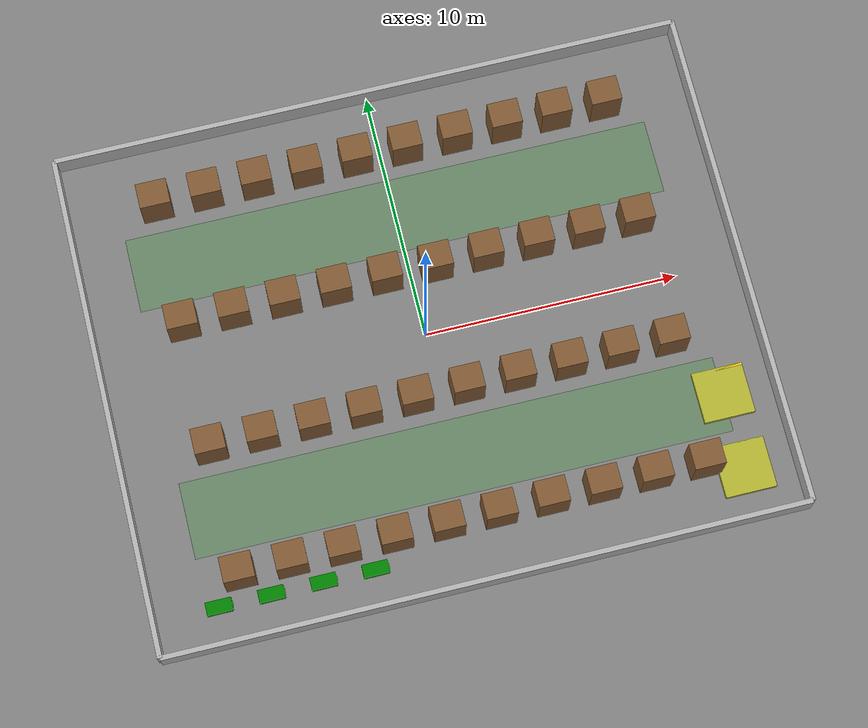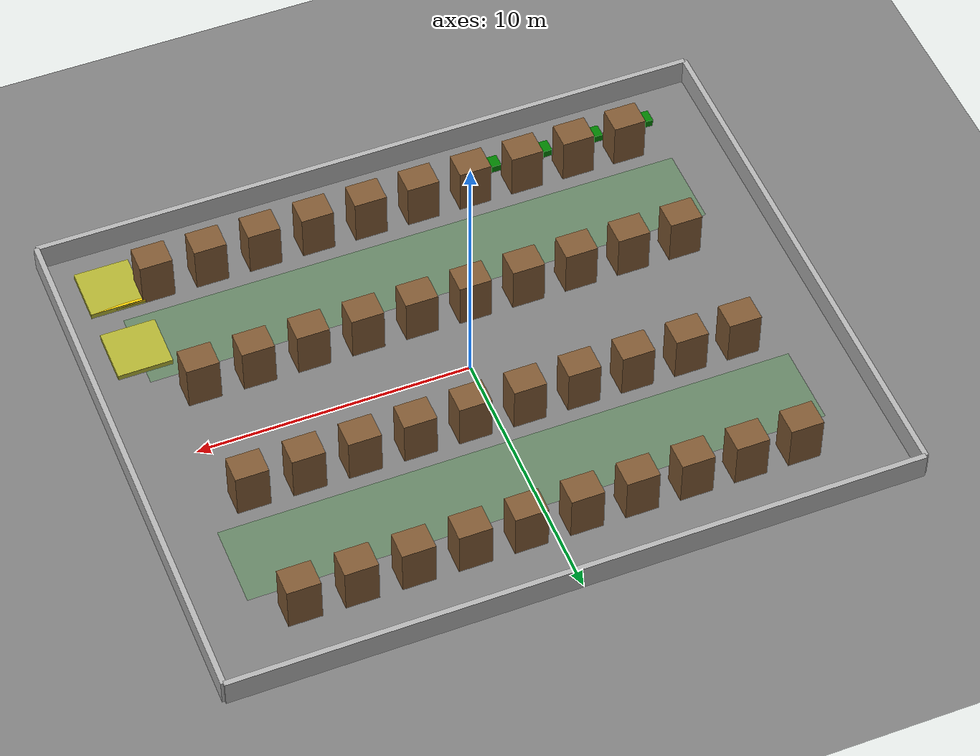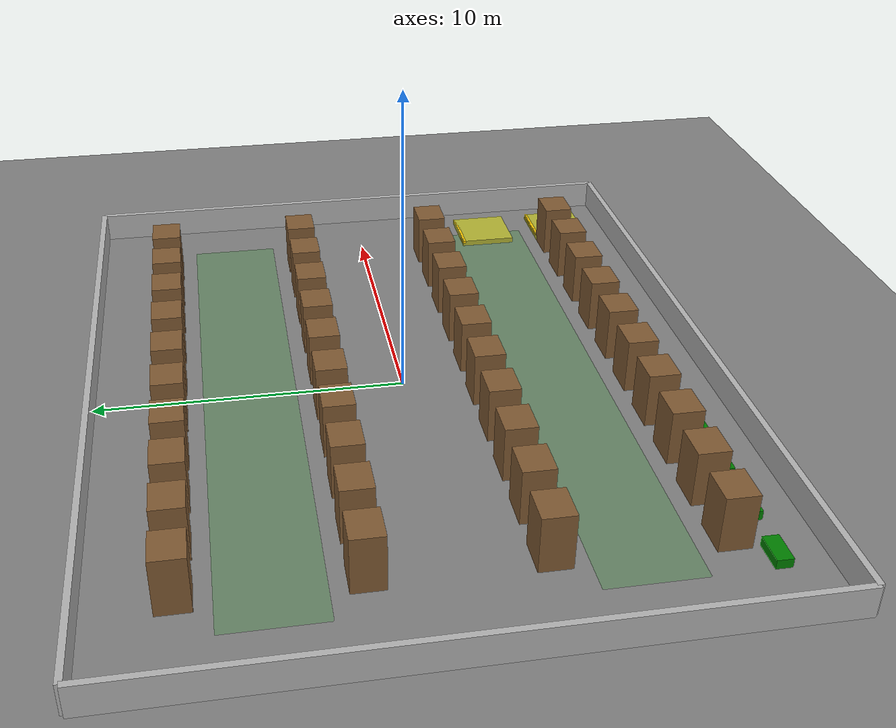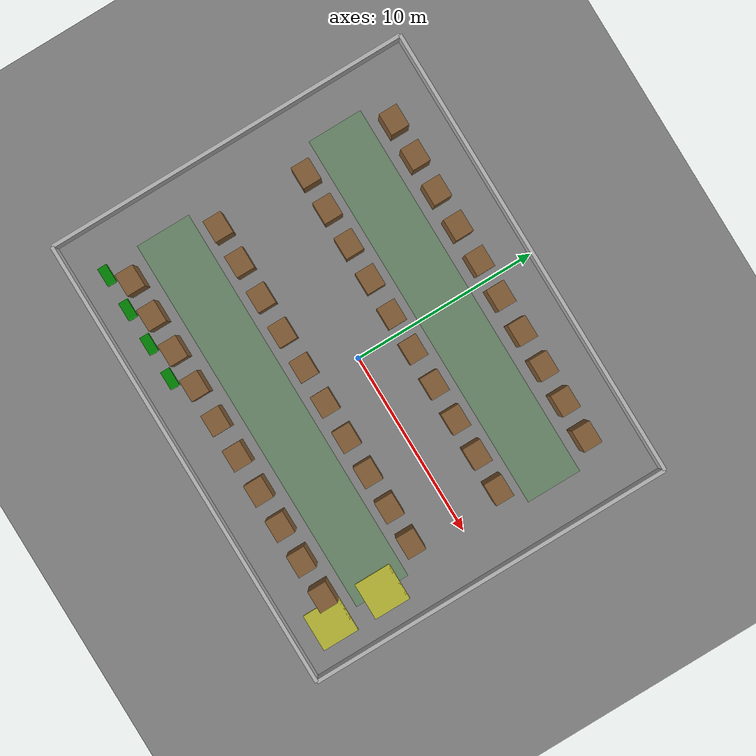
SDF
<?xml version="1.0"?>
<!--
  Warehouse World for AGV Simulation
  Dimensions: 25m x 20m (500m²)
  Layout: 4 rows x 10 shelf groups
  2 main corridors (3m wide) + 4 secondary corridors (2m wide)
  Charging area + Loading docks
-->
<sdf version="1.8">
<world name="warehouse">

  <!-- Physics configuration -->
  <physics name="default_physics" default="true" type="ignored">
    <max_step_size>0.001</max_step_size>
    <real_time_factor>1.0</real_time_factor>
    <real_time_update_rate>1000</real_time_update_rate>
  </physics>

  <!-- Global light -->
  <light name="sun" type="directional">
    <pose>0 0 15 0 0 0</pose>
    <diffuse>0.8 0.8 0.8 1.0</diffuse>
    <specular>0.2 0.2 0.2 1.0</specular>
    <direction>-0.5 0.1 -0.9</direction>
  </light>

  <!-- Ground plane -->
  <model name="ground_plane">
    <static>true</static>
    <link name="link">
      <collision name="collision">
        <geometry>
          <plane>
            <normal>0 0 1</normal>
            <size>30 25</size>
          </plane>
        </geometry>
      </collision>
      <visual name="visual">
        <geometry>
          <plane>
            <normal>0 0 1</normal>
            <size>30 25</size>
          </plane>
        </geometry>
        <material>
          <ambient>0.3 0.3 0.3 1.0</ambient>
          <diffuse>0.5 0.5 0.5 1.0</diffuse>
        </material>
      </visual>
    </link>
  </model>

  <!-- Walls                                        -->
  <model name="wall_north">
    <static>true</static>
    <pose>0 10 0.5 0 0 0</pose>
    <link name="link">
      <collision name="collision">
        <geometry><box><size>25 0.2 1</size></box></geometry>
      </collision>
      <visual name="visual">
        <geometry><box><size>25 0.2 1</size></box></geometry>
        <material>
          <ambient>0.7 0.7 0.7 1.0</ambient>
        </material>
      </visual>
    </link>
  </model>

  <model name="wall_south">
    <static>true</static>
    <pose>0 -10 0.5 0 0 0</pose>
    <link name="link">
      <collision name="collision">
        <geometry><box><size>25 0.2 1</size></box></geometry>
      </collision>
      <visual name="visual">
        <geometry><box><size>25 0.2 1</size></box></geometry>
        <material>
          <ambient>0.7 0.7 0.7 1.0</ambient>
        </material>
      </visual>
    </link>
  </model>

  <model name="wall_east">
    <static>true</static>
    <pose>12.5 0 0.5 0 0 0</pose>
    <link name="link">
      <collision name="collision">
        <geometry><box><size>0.2 20 1</size></box></geometry>
      </collision>
      <visual name="visual">
        <geometry><box><size>0.2 20 1</size></box></geometry>
        <material>
          <ambient>0.7 0.7 0.7 1.0</ambient>
        </material>
      </visual>
    </link>
  </model>

  <model name="wall_west">
    <static>true</static>
    <pose>-12.5 0 0.5 0 0 0</pose>
    <link name="link">
      <collision name="collision">
        <geometry><box><size>0.2 20 1</size></box></geometry>
      </collision>
      <visual name="visual">
        <geometry><box><size>0.2 20 1</size></box></geometry>
        <material>
          <ambient>0.7 0.7 0.7 1.0</ambient>
        </material>
      </visual>
    </link>
  </model>

  <!-- Shelf Rows (4 rows x 10 groups, 2m spacing)   -->
  <!-- Row 1 (top) -->
  <include>
    <uri>model://shelf</uri>
    <name>shelf_1_1</name>
    <pose>-9 7.5 0 0 0 0</pose>
  </include>
  <include>
    <uri>model://shelf</uri>
    <name>shelf_1_2</name>
    <pose>-7 7.5 0 0 0 0</pose>
  </include>
  <include>
    <uri>model://shelf</uri>
    <name>shelf_1_3</name>
    <pose>-5 7.5 0 0 0 0</pose>
  </include>
  <include>
    <uri>model://shelf</uri>
    <name>shelf_1_4</name>
    <pose>-3 7.5 0 0 0 0</pose>
  </include>
  <include>
    <uri>model://shelf</uri>
    <name>shelf_1_5</name>
    <pose>-1 7.5 0 0 0 0</pose>
  </include>
  <include>
    <uri>model://shelf</uri>
    <name>shelf_1_6</name>
    <pose>1 7.5 0 0 0 0</pose>
  </include>
  <include>
    <uri>model://shelf</uri>
    <name>shelf_1_7</name>
    <pose>3 7.5 0 0 0 0</pose>
  </include>
  <include>
    <uri>model://shelf</uri>
    <name>shelf_1_8</name>
    <pose>5 7.5 0 0 0 0</pose>
  </include>
  <include>
    <uri>model://shelf</uri>
    <name>shelf_1_9</name>
    <pose>7 7.5 0 0 0 0</pose>
  </include>
  <include>
    <uri>model://shelf</uri>
    <name>shelf_1_10</name>
    <pose>9 7.5 0 0 0 0</pose>
  </include>

  <!-- Row 2 -->
  <include>
    <uri>model://shelf</uri>
    <name>shelf_2_1</name>
    <pose>-9 2.5 0 0 0 0</pose>
  </include>
  <include>
    <uri>model://shelf</uri>
    <name>shelf_2_2</name>
    <pose>-7 2.5 0 0 0 0</pose>
  </include>
  <include>
    <uri>model://shelf</uri>
    <name>shelf_2_3</name>
    <pose>-5 2.5 0 0 0 0</pose>
  </include>
  <include>
    <uri>model://shelf</uri>
    <name>shelf_2_4</name>
    <pose>-3 2.5 0 0 0 0</pose>
  </include>
  <include>
    <uri>model://shelf</uri>
    <name>shelf_2_5</name>
    <pose>-1 2.5 0 0 0 0</pose>
  </include>
  <include>
    <uri>model://shelf</uri>
    <name>shelf_2_6</name>
    <pose>1 2.5 0 0 0 0</pose>
  </include>
  <include>
    <uri>model://shelf</uri>
    <name>shelf_2_7</name>
    <pose>3 2.5 0 0 0 0</pose>
  </include>
  <include>
    <uri>model://shelf</uri>
    <name>shelf_2_8</name>
    <pose>5 2.5 0 0 0 0</pose>
  </include>
  <include>
    <uri>model://shelf</uri>
    <name>shelf_2_9</name>
    <pose>7 2.5 0 0 0 0</pose>
  </include>
  <include>
    <uri>model://shelf</uri>
    <name>shelf_2_10</name>
    <pose>9 2.5 0 0 0 0</pose>
  </include>

  <!-- Row 3 -->
  <include>
    <uri>model://shelf</uri>
    <name>shelf_3_1</name>
    <pose>-9 -2.5 0 0 0 0</pose>
  </include>
  <include>
    <uri>model://shelf</uri>
    <name>shelf_3_2</name>
    <pose>-7 -2.5 0 0 0 0</pose>
  </include>
  <include>
    <uri>model://shelf</uri>
    <name>shelf_3_3</name>
    <pose>-5 -2.5 0 0 0 0</pose>
  </include>
  <include>
    <uri>model://shelf</uri>
    <name>shelf_3_4</name>
    <pose>-3 -2.5 0 0 0 0</pose>
  </include>
  <include>
    <uri>model://shelf</uri>
    <name>shelf_3_5</name>
    <pose>-1 -2.5 0 0 0 0</pose>
  </include>
  <include>
    <uri>model://shelf</uri>
    <name>shelf_3_6</name>
    <pose>1 -2.5 0 0 0 0</pose>
  </include>
  <include>
    <uri>model://shelf</uri>
    <name>shelf_3_7</name>
    <pose>3 -2.5 0 0 0 0</pose>
  </include>
  <include>
    <uri>model://shelf</uri>
    <name>shelf_3_8</name>
    <pose>5 -2.5 0 0 0 0</pose>
  </include>
  <include>
    <uri>model://shelf</uri>
    <name>shelf_3_9</name>
    <pose>7 -2.5 0 0 0 0</pose>
  </include>
  <include>
    <uri>model://shelf</uri>
    <name>shelf_3_10</name>
    <pose>9 -2.5 0 0 0 0</pose>
  </include>

  <!-- Row 4 (bottom) -->
  <include>
    <uri>model://shelf</uri>
    <name>shelf_4_1</name>
    <pose>-9 -7.5 0 0 0 0</pose>
  </include>
  <include>
    <uri>model://shelf</uri>
    <name>shelf_4_2</name>
    <pose>-7 -7.5 0 0 0 0</pose>
  </include>
  <include>
    <uri>model://shelf</uri>
    <name>shelf_4_3</name>
    <pose>-5 -7.5 0 0 0 0</pose>
  </include>
  <include>
    <uri>model://shelf</uri>
    <name>shelf_4_4</name>
    <pose>-3 -7.5 0 0 0 0</pose>
  </include>
  <include>
    <uri>model://shelf</uri>
    <name>shelf_4_5</name>
    <pose>-1 -7.5 0 0 0 0</pose>
  </include>
  <include>
    <uri>model://shelf</uri>
    <name>shelf_4_6</name>
    <pose>1 -7.5 0 0 0 0</pose>
  </include>
  <include>
    <uri>model://shelf</uri>
    <name>shelf_4_7</name>
    <pose>3 -7.5 0 0 0 0</pose>
  </include>
  <include>
    <uri>model://shelf</uri>
    <name>shelf_4_8</name>
    <pose>5 -7.5 0 0 0 0</pose>
  </include>
  <include>
    <uri>model://shelf</uri>
    <name>shelf_4_9</name>
    <pose>7 -7.5 0 0 0 0</pose>
  </include>
  <include>
    <uri>model://shelf</uri>
    <name>shelf_4_10</name>
    <pose>9 -7.5 0 0 0 0</pose>
  </include>

  <!-- Charging Stations (4 positions)               -->
  <include>
    <uri>model://charging_station</uri>
    <name>charger_1</name>
    <pose>-10 -8.5 0 0 0 0</pose>
  </include>
  <include>
    <uri>model://charging_station</uri>
    <name>charger_2</name>
    <pose>-8 -8.5 0 0 0 0</pose>
  </include>
  <include>
    <uri>model://charging_station</uri>
    <name>charger_3</name>
    <pose>-6 -8.5 0 0 0 0</pose>
  </include>
  <include>
    <uri>model://charging_station</uri>
    <name>charger_4</name>
    <pose>-4 -8.5 0 0 0 0</pose>
  </include>

  <!-- Loading Docks (2 positions)                   -->
  <include>
    <uri>model://loading_dock</uri>
    <name>dock_1</name>
    <pose>10.5 -8 0 0 0 0</pose>
  </include>
  <include>
    <uri>model://loading_dock</uri>
    <name>dock_2</name>
    <pose>10.5 -5 0 0 0 0</pose>
  </include>

  <!-- Corridor Floor Markings                      -->
  <!-- Main corridor 1: between rows 1-2 (y=5) -->
  <model name="corridor_marking_1">
    <static>true</static>
    <pose>0 5 0.001 0 0 0</pose>
    <link name="link">
      <visual name="visual">
        <geometry><box><size>21 3.0 0.001</size></box></geometry>
        <material>
          <ambient>0.2 0.6 0.2 0.3</ambient>
          <diffuse>0.2 0.6 0.2 0.3</diffuse>
        </material>
      </visual>
    </link>
  </model>

  <!-- Main corridor 2: between rows 3-4 (y=-5) -->
  <model name="corridor_marking_2">
    <static>true</static>
    <pose>0 -5 0.001 0 0 0</pose>
    <link name="link">
      <visual name="visual">
        <geometry><box><size>21 3.0 0.001</size></box></geometry>
        <material>
          <ambient>0.2 0.6 0.2 0.3</ambient>
          <diffuse>0.2 0.6 0.2 0.3</diffuse>
        </material>
      </visual>
    </link>
  </model>

  <!-- Secondary corridors: vertical gaps between shelf groups (x positions) -->
  <!-- Corridors at x=-8, -6, -4, -2, 0, 2, 4, 6, 8 -->

  <!-- AGV Spawn Points (will be spawned via launch) -->

</world>
</sdf>

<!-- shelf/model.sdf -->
<!--
  Warehouse Shelf Model
  Dimensions: 1.2m x 1.0m x 1.8m
-->
<sdf version="1.8">
<model name="shelf">
  <static>true</static>
  <link name="shelf_link">
    <pose>0 0 0.9 0 0 0</pose>
    <collision name="collision">
      <geometry><box><size>1.2 1.0 1.8</size></box></geometry>
    </collision>
    <visual name="visual">
      <geometry><box><size>1.2 1.0 1.8</size></box></geometry>
      <material>
        <ambient>0.5 0.35 0.2 1.0</ambient>
        <diffuse>0.5 0.35 0.2 1.0</diffuse>
      </material>
    </visual>
  </link>
</model>
</sdf>

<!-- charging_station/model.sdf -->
<!--
  Charging Station Model
  Dimensions: 1.0m x 0.5m x 0.3m
-->
<sdf version="1.8">
<model name="charging_station">
  <static>true</static>
  <link name="link">
    <pose>0 0 0.15 0 0 0</pose>
    <collision name="collision">
      <geometry><box><size>1.0 0.5 0.3</size></box></geometry>
    </collision>
    <visual name="visual">
      <geometry><box><size>1.0 0.5 0.3</size></box></geometry>
      <material>
        <ambient>0.0 0.5 0.0 1.0</ambient>
        <diffuse>0.0 0.5 0.0 1.0</diffuse>
      </material>
    </visual>
  </link>
  <!-- Charging contact point marker -->
  <link name="contact_marker">
    <pose>0.5 0 0.15 0 0 0</pose>
    <visual name="visual">
      <geometry><box><size>0.05 0.2 0.05</size></box></geometry>
      <material>
        <ambient>0.0 1.0 0.0 1.0</ambient>
        <diffuse>0.0 1.0 0.0 1.0</diffuse>
      </material>
    </visual>
  </link>
  <joint name="marker_joint" type="fixed">
    <parent>link</parent>
    <child>contact_marker</child>
  </joint>
</model>
</sdf>

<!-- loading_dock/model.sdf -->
<!--
  Loading Dock Model
  Dimensions: 2.0m x 2.0m x 0.2m
-->
<sdf version="1.8">
<model name="loading_dock">
  <static>true</static>
  <link name="dock_platform">
    <pose>0 0 0.1 0 0 0</pose>
    <collision name="collision">
      <geometry><box><size>2.0 2.0 0.2</size></box></geometry>
    </collision>
    <visual name="visual">
      <geometry><box><size>2.0 2.0 0.2</size></box></geometry>
      <material>
        <ambient>0.7 0.7 0.2 1.0</ambient>
        <diffuse>0.7 0.7 0.2 1.0</diffuse>
      </material>
    </visual>
  </link>
  <!-- Dock edge markers -->
  <link name="edge_north">
    <pose>0 0.95 0.15 0 0 0</pose>
    <visual name="visual">
      <geometry><box><size>2.0 0.1 0.1</size></box></geometry>
      <material>
        <ambient>1.0 0.8 0.0 1.0</ambient>
      </material>
    </visual>
  </link>
  <joint name="edge_north_joint" type="fixed">
    <parent>dock_platform</parent>
    <child>edge_north</child>
  </joint>
</model>
</sdf>
